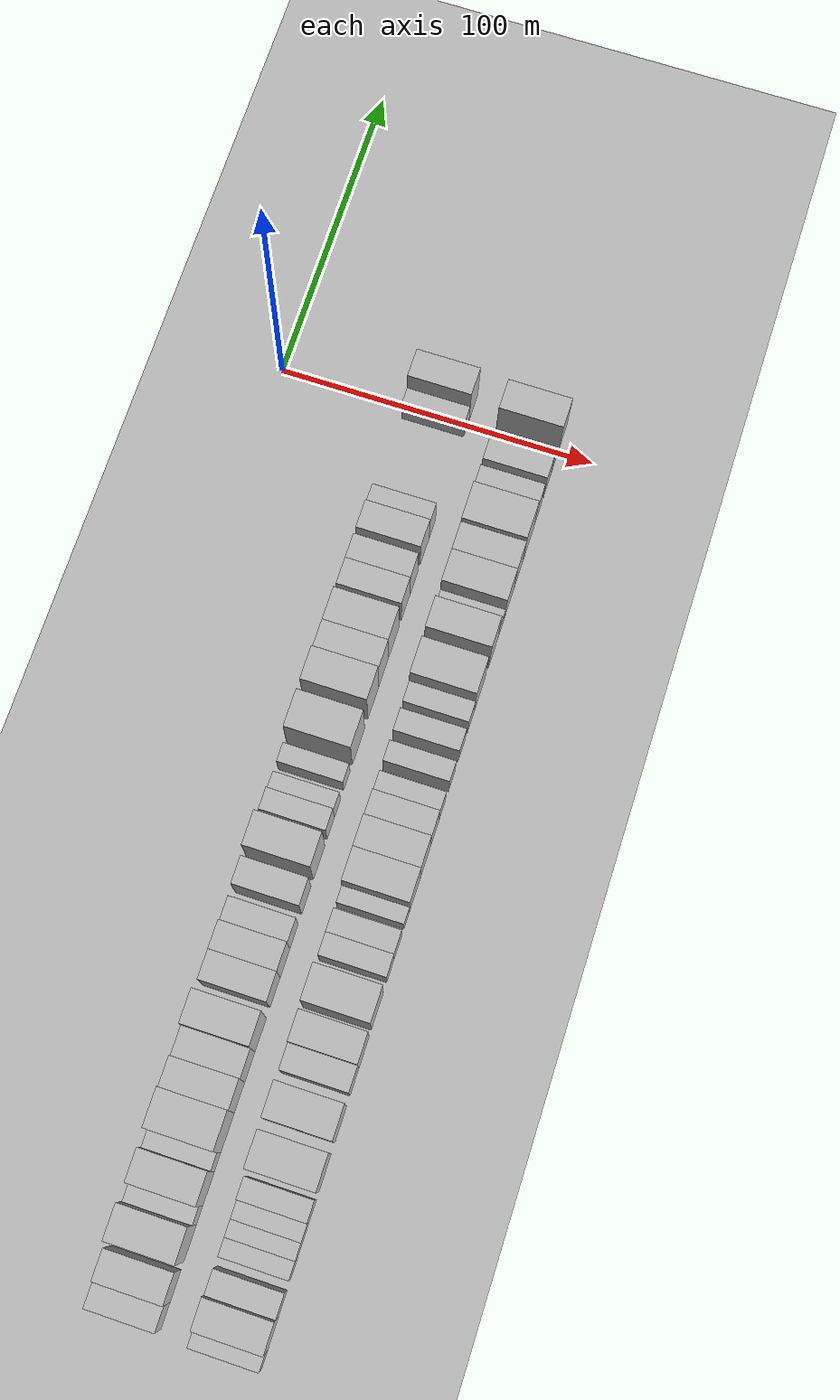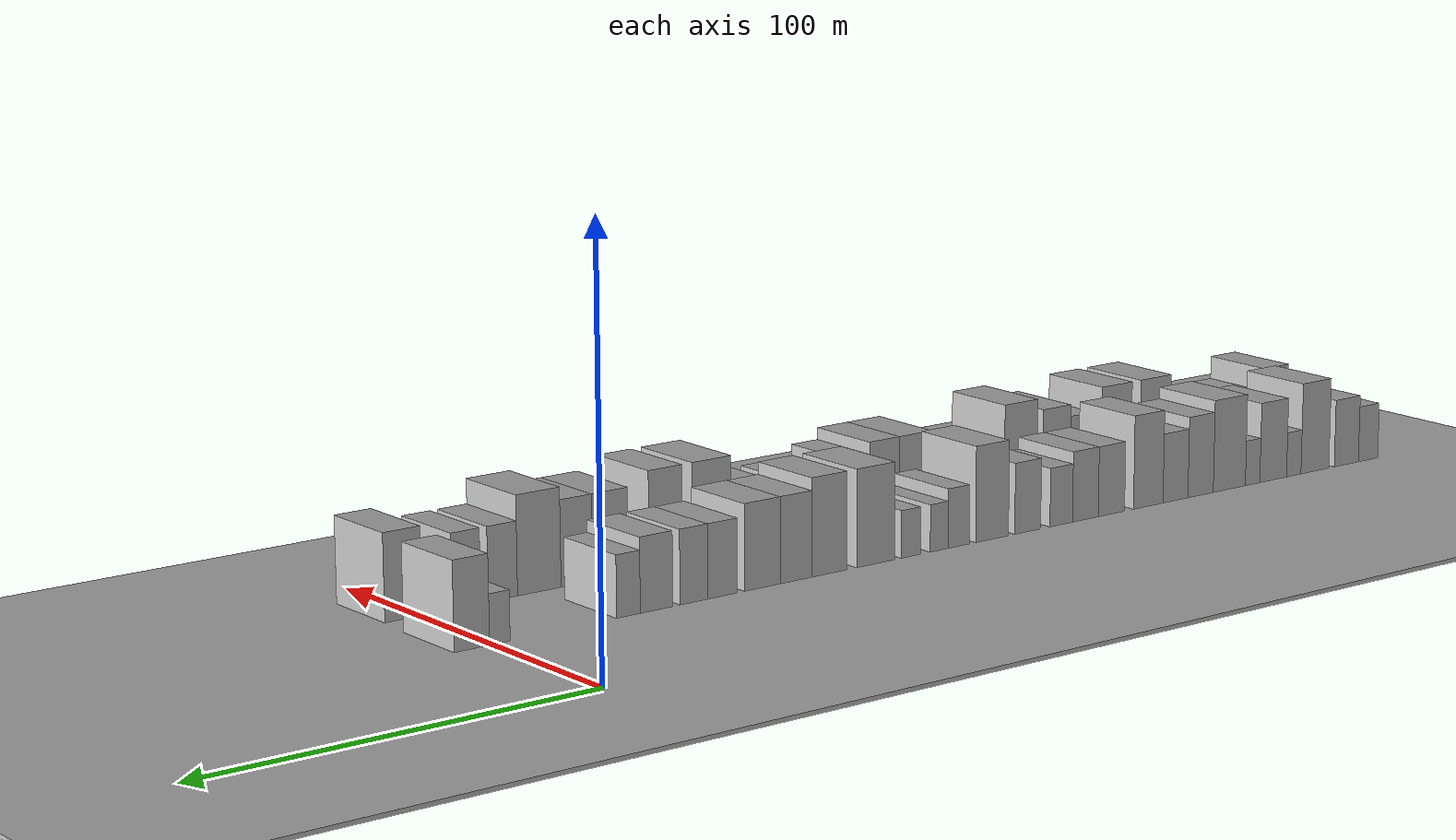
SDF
<sdf version="1.6">
 <world name="default">
  <include><name>ground_plane_1</name><uri>model://HANNAS_ground_plane</uri></include>
  <include>
   <name>ground_plane_2</name>
   <uri>model://HANNAS_ground_plane</uri>
   <pose>100 0 0  0 0 0</pose>
  </include>
  <model name="building_1">
   <static>1</static>
   <pose>50.0000 -271.3934 0 0.000000 0.000000 0.000000</pose>
   <link name="link">
    <pose>0 0 7.50 0 0 0</pose>
    <collision name="collision"><geometry><box><size>20.0000 7.2133 15.0000</size></box></geometry></collision>
    <visual name="visual">
     <cast_shadows>0</cast_shadows>
     <geometry><box><size>20.0000 7.2133 15.0000</size></box></geometry>
     <material>
      <script>
       <uri>model://HANNAS_wall/materials/scripts</uri>
       <uri>model://HANNAS_wall/materials/textures</uri>
       <name>vrc/HANNAS_wall</name>
      </script>
     </material>
    </visual>
   </link>
  </model>
  <model name="building_2">
   <static>1</static>
   <pose>50.0000 -263.3516 0 0.000000 0.000000 0.000000</pose>
   <link name="link">
    <pose>0 0 9.00 0 0 0</pose>
    <collision name="collision"><geometry><box><size>20.0000 8.8703 18.0000</size></box></geometry></collision>
    <visual name="visual">
     <cast_shadows>0</cast_shadows>
     <geometry><box><size>20.0000 8.8703 18.0000</size></box></geometry>
     <material>
      <script>
       <uri>model://HANNAS_wall/materials/scripts</uri>
       <uri>model://HANNAS_wall/materials/textures</uri>
       <name>vrc/HANNAS_wall</name>
      </script>
     </material>
    </visual>
   </link>
  </model>
  <model name="building_3">
   <static>1</static>
   <pose>50.0000 -251.8428 0 0.000000 0.000000 0.000000</pose>
   <link name="link">
    <pose>0 0 12.00 0 0 0</pose>
    <collision name="collision"><geometry><box><size>20.0000 10.1471 24.0000</size></box></geometry></collision>
    <visual name="visual">
     <cast_shadows>0</cast_shadows>
     <geometry><box><size>20.0000 10.1471 24.0000</size></box></geometry>
     <material>
      <script>
       <uri>model://HANNAS_wall/materials/scripts</uri>
       <uri>model://HANNAS_wall/materials/textures</uri>
       <name>vrc/HANNAS_wall</name>
      </script>
     </material>
    </visual>
   </link>
  </model>
  <model name="building_4">
   <static>1</static>
   <pose>50.0000 -244.1770 0 0.000000 0.000000 0.000000</pose>
   <link name="link">
    <pose>0 0 6.00 0 0 0</pose>
    <collision name="collision"><geometry><box><size>20.0000 5.1846 12.0000</size></box></geometry></collision>
    <visual name="visual">
     <cast_shadows>0</cast_shadows>
     <geometry><box><size>20.0000 5.1846 12.0000</size></box></geometry>
     <material>
      <script>
       <uri>model://HANNAS_wall/materials/scripts</uri>
       <uri>model://HANNAS_wall/materials/textures</uri>
       <name>vrc/HANNAS_wall</name>
      </script>
     </material>
    </visual>
   </link>
  </model>
  <model name="building_5">
   <static>1</static>
   <pose>50.0000 -236.8170 0 0.000000 0.000000 0.000000</pose>
   <link name="link">
    <pose>0 0 10.50 0 0 0</pose>
    <collision name="collision"><geometry><box><size>20.0000 9.5352 21.0000</size></box></geometry></collision>
    <visual name="visual">
     <cast_shadows>0</cast_shadows>
     <geometry><box><size>20.0000 9.5352 21.0000</size></box></geometry>
     <material>
      <script>
       <uri>model://HANNAS_wall/materials/scripts</uri>
       <uri>model://HANNAS_wall/materials/textures</uri>
       <name>vrc/HANNAS_wall</name>
      </script>
     </material>
    </visual>
   </link>
  </model>
  <model name="building_6">
   <static>1</static>
   <pose>50.0000 -229.4893 0 0.000000 0.000000 0.000000</pose>
   <link name="link">
    <pose>0 0 6.00 0 0 0</pose>
    <collision name="collision"><geometry><box><size>20.0000 5.1203 12.0000</size></box></geometry></collision>
    <visual name="visual">
     <cast_shadows>0</cast_shadows>
     <geometry><box><size>20.0000 5.1203 12.0000</size></box></geometry>
     <material>
      <script>
       <uri>model://HANNAS_wall/materials/scripts</uri>
       <uri>model://HANNAS_wall/materials/textures</uri>
       <name>vrc/HANNAS_wall</name>
      </script>
     </material>
    </visual>
   </link>
  </model>
  <model name="building_7">
   <static>1</static>
   <pose>50.0000 -221.3045 0 0.000000 0.000000 0.000000</pose>
   <link name="link">
    <pose>0 0 12.00 0 0 0</pose>
    <collision name="collision"><geometry><box><size>20.0000 11.2494 24.0000</size></box></geometry></collision>
    <visual name="visual">
     <cast_shadows>0</cast_shadows>
     <geometry><box><size>20.0000 11.2494 24.0000</size></box></geometry>
     <material>
      <script>
       <uri>model://HANNAS_wall/materials/scripts</uri>
       <uri>model://HANNAS_wall/materials/textures</uri>
       <name>vrc/HANNAS_wall</name>
      </script>
     </material>
    </visual>
   </link>
  </model>
  <model name="building_8">
   <static>1</static>
   <pose>50.0000 -211.3098 0 0.000000 0.000000 0.000000</pose>
   <link name="link">
    <pose>0 0 10.50 0 0 0</pose>
    <collision name="collision"><geometry><box><size>20.0000 8.7400 21.0000</size></box></geometry></collision>
    <visual name="visual">
     <cast_shadows>0</cast_shadows>
     <geometry><box><size>20.0000 8.7400 21.0000</size></box></geometry>
     <material>
      <script>
       <uri>model://HANNAS_wall/materials/scripts</uri>
       <uri>model://HANNAS_wall/materials/textures</uri>
       <name>vrc/HANNAS_wall</name>
      </script>
     </material>
    </visual>
   </link>
  </model>
  <model name="building_9">
   <static>1</static>
   <pose>50.0000 -202.6717 0 0.000000 0.000000 0.000000</pose>
   <link name="link">
    <pose>0 0 9.00 0 0 0</pose>
    <collision name="collision"><geometry><box><size>20.0000 8.5363 18.0000</size></box></geometry></collision>
    <visual name="visual">
     <cast_shadows>0</cast_shadows>
     <geometry><box><size>20.0000 8.5363 18.0000</size></box></geometry>
     <material>
      <script>
       <uri>model://HANNAS_wall/materials/scripts</uri>
       <uri>model://HANNAS_wall/materials/textures</uri>
       <name>vrc/HANNAS_wall</name>
      </script>
     </material>
    </visual>
   </link>
  </model>
  <model name="building_10">
   <static>1</static>
   <pose>50.0000 -193.4217 0 0.000000 0.000000 0.000000</pose>
   <link name="link">
    <pose>0 0 12.00 0 0 0</pose>
    <collision name="collision"><geometry><box><size>20.0000 9.9637 24.0000</size></box></geometry></collision>
    <visual name="visual">
     <cast_shadows>0</cast_shadows>
     <geometry><box><size>20.0000 9.9637 24.0000</size></box></geometry>
     <material>
      <script>
       <uri>model://HANNAS_wall/materials/scripts</uri>
       <uri>model://HANNAS_wall/materials/textures</uri>
       <name>vrc/HANNAS_wall</name>
      </script>
     </material>
    </visual>
   </link>
  </model>
  <model name="building_11">
   <static>1</static>
   <pose>50.0000 -181.0662 0 0.000000 0.000000 0.000000</pose>
   <link name="link">
    <pose>0 0 9.00 0 0 0</pose>
    <collision name="collision"><geometry><box><size>20.0000 8.7472 18.0000</size></box></geometry></collision>
    <visual name="visual">
     <cast_shadows>0</cast_shadows>
     <geometry><box><size>20.0000 8.7472 18.0000</size></box></geometry>
     <material>
      <script>
       <uri>model://HANNAS_wall/materials/scripts</uri>
       <uri>model://HANNAS_wall/materials/textures</uri>
       <name>vrc/HANNAS_wall</name>
      </script>
     </material>
    </visual>
   </link>
  </model>
  <model name="building_12">
   <static>1</static>
   <pose>50.0000 -172.4583 0 0.000000 0.000000 0.000000</pose>
   <link name="link">
    <pose>0 0 9.00 0 0 0</pose>
    <collision name="collision"><geometry><box><size>20.0000 8.4685 18.0000</size></box></geometry></collision>
    <visual name="visual">
     <cast_shadows>0</cast_shadows>
     <geometry><box><size>20.0000 8.4685 18.0000</size></box></geometry>
     <material>
      <script>
       <uri>model://HANNAS_wall/materials/scripts</uri>
       <uri>model://HANNAS_wall/materials/textures</uri>
       <name>vrc/HANNAS_wall</name>
      </script>
     </material>
    </visual>
   </link>
  </model>
  <model name="building_13">
   <static>1</static>
   <pose>50.0000 -164.5516 0 0.000000 0.000000 0.000000</pose>
   <link name="link">
    <pose>0 0 7.50 0 0 0</pose>
    <collision name="collision"><geometry><box><size>20.0000 7.3451 15.0000</size></box></geometry></collision>
    <visual name="visual">
     <cast_shadows>0</cast_shadows>
     <geometry><box><size>20.0000 7.3451 15.0000</size></box></geometry>
     <material>
      <script>
       <uri>model://HANNAS_wall/materials/scripts</uri>
       <uri>model://HANNAS_wall/materials/textures</uri>
       <name>vrc/HANNAS_wall</name>
      </script>
     </material>
    </visual>
   </link>
  </model>
  <model name="building_14">
   <static>1</static>
   <pose>50.0000 -153.7193 0 0.000000 0.000000 0.000000</pose>
   <link name="link">
    <pose>0 0 9.00 0 0 0</pose>
    <collision name="collision"><geometry><box><size>20.0000 8.3196 18.0000</size></box></geometry></collision>
    <visual name="visual">
     <cast_shadows>0</cast_shadows>
     <geometry><box><size>20.0000 8.3196 18.0000</size></box></geometry>
     <material>
      <script>
       <uri>model://HANNAS_wall/materials/scripts</uri>
       <uri>model://HANNAS_wall/materials/textures</uri>
       <name>vrc/HANNAS_wall</name>
      </script>
     </material>
    </visual>
   </link>
  </model>
  <model name="building_15">
   <static>1</static>
   <pose>50.0000 -142.3722 0 0.000000 0.000000 0.000000</pose>
   <link name="link">
    <pose>0 0 12.00 0 0 0</pose>
    <collision name="collision"><geometry><box><size>20.0000 10.3744 24.0000</size></box></geometry></collision>
    <visual name="visual">
     <cast_shadows>0</cast_shadows>
     <geometry><box><size>20.0000 10.3744 24.0000</size></box></geometry>
     <material>
      <script>
       <uri>model://HANNAS_wall/materials/scripts</uri>
       <uri>model://HANNAS_wall/materials/textures</uri>
       <name>vrc/HANNAS_wall</name>
      </script>
     </material>
    </visual>
   </link>
  </model>
  <model name="building_16">
   <static>1</static>
   <pose>50.0000 -131.8775 0 0.000000 0.000000 0.000000</pose>
   <link name="link">
    <pose>0 0 7.50 0 0 0</pose>
    <collision name="collision"><geometry><box><size>20.0000 6.6150 15.0000</size></box></geometry></collision>
    <visual name="visual">
     <cast_shadows>0</cast_shadows>
     <geometry><box><size>20.0000 6.6150 15.0000</size></box></geometry>
     <material>
      <script>
       <uri>model://HANNAS_wall/materials/scripts</uri>
       <uri>model://HANNAS_wall/materials/textures</uri>
       <name>vrc/HANNAS_wall</name>
      </script>
     </material>
    </visual>
   </link>
  </model>
  <model name="building_17">
   <static>1</static>
   <pose>50.0000 -125.8137 0 0.000000 0.000000 0.000000</pose>
   <link name="link">
    <pose>0 0 6.00 0 0 0</pose>
    <collision name="collision"><geometry><box><size>20.0000 5.5126 12.0000</size></box></geometry></collision>
    <visual name="visual">
     <cast_shadows>0</cast_shadows>
     <geometry><box><size>20.0000 5.5126 12.0000</size></box></geometry>
     <material>
      <script>
       <uri>model://HANNAS_wall/materials/scripts</uri>
       <uri>model://HANNAS_wall/materials/textures</uri>
       <name>vrc/HANNAS_wall</name>
      </script>
     </material>
    </visual>
   </link>
  </model>
  <model name="building_18">
   <static>1</static>
   <pose>50.0000 -117.1598 0 0.000000 0.000000 0.000000</pose>
   <link name="link">
    <pose>0 0 6.00 0 0 0</pose>
    <collision name="collision"><geometry><box><size>20.0000 5.7952 12.0000</size></box></geometry></collision>
    <visual name="visual">
     <cast_shadows>0</cast_shadows>
     <geometry><box><size>20.0000 5.7952 12.0000</size></box></geometry>
     <material>
      <script>
       <uri>model://HANNAS_wall/materials/scripts</uri>
       <uri>model://HANNAS_wall/materials/textures</uri>
       <name>vrc/HANNAS_wall</name>
      </script>
     </material>
    </visual>
   </link>
  </model>
  <model name="building_19">
   <static>1</static>
   <pose>50.0000 -106.5253 0 0.000000 0.000000 0.000000</pose>
   <link name="link">
    <pose>0 0 12.00 0 0 0</pose>
    <collision name="collision"><geometry><box><size>20.0000 11.4739 24.0000</size></box></geometry></collision>
    <visual name="visual">
     <cast_shadows>0</cast_shadows>
     <geometry><box><size>20.0000 11.4739 24.0000</size></box></geometry>
     <material>
      <script>
       <uri>model://HANNAS_wall/materials/scripts</uri>
       <uri>model://HANNAS_wall/materials/textures</uri>
       <name>vrc/HANNAS_wall</name>
      </script>
     </material>
    </visual>
   </link>
  </model>
  <model name="building_20">
   <static>1</static>
   <pose>50.0000 -92.6263 0 0.000000 0.000000 0.000000</pose>
   <link name="link">
    <pose>0 0 12.00 0 0 0</pose>
    <collision name="collision"><geometry><box><size>20.0000 10.3240 24.0000</size></box></geometry></collision>
    <visual name="visual">
     <cast_shadows>0</cast_shadows>
     <geometry><box><size>20.0000 10.3240 24.0000</size></box></geometry>
     <material>
      <script>
       <uri>model://HANNAS_wall/materials/scripts</uri>
       <uri>model://HANNAS_wall/materials/textures</uri>
       <name>vrc/HANNAS_wall</name>
      </script>
     </material>
    </visual>
   </link>
  </model>
  <model name="building_21">
   <static>1</static>
   <pose>50.0000 -82.8727 0 0.000000 0.000000 0.000000</pose>
   <link name="link">
    <pose>0 0 10.50 0 0 0</pose>
    <collision name="collision"><geometry><box><size>20.0000 9.1832 21.0000</size></box></geometry></collision>
    <visual name="visual">
     <cast_shadows>0</cast_shadows>
     <geometry><box><size>20.0000 9.1832 21.0000</size></box></geometry>
     <material>
      <script>
       <uri>model://HANNAS_wall/materials/scripts</uri>
       <uri>model://HANNAS_wall/materials/textures</uri>
       <name>vrc/HANNAS_wall</name>
      </script>
     </material>
    </visual>
   </link>
  </model>
  <model name="building_22">
   <static>1</static>
   <pose>50.0000 -73.1384 0 0.000000 0.000000 0.000000</pose>
   <link name="link">
    <pose>0 0 10.50 0 0 0</pose>
    <collision name="collision"><geometry><box><size>20.0000 10.2854 21.0000</size></box></geometry></collision>
    <visual name="visual">
     <cast_shadows>0</cast_shadows>
     <geometry><box><size>20.0000 10.2854 21.0000</size></box></geometry>
     <material>
      <script>
       <uri>model://HANNAS_wall/materials/scripts</uri>
       <uri>model://HANNAS_wall/materials/textures</uri>
       <name>vrc/HANNAS_wall</name>
      </script>
     </material>
    </visual>
   </link>
  </model>
  <model name="building_23">
   <static>1</static>
   <pose>50.0000 -61.7829 0 0.000000 0.000000 0.000000</pose>
   <link name="link">
    <pose>0 0 9.00 0 0 0</pose>
    <collision name="collision"><geometry><box><size>20.0000 8.4257 18.0000</size></box></geometry></collision>
    <visual name="visual">
     <cast_shadows>0</cast_shadows>
     <geometry><box><size>20.0000 8.4257 18.0000</size></box></geometry>
     <material>
      <script>
       <uri>model://HANNAS_wall/materials/scripts</uri>
       <uri>model://HANNAS_wall/materials/textures</uri>
       <name>vrc/HANNAS_wall</name>
      </script>
     </material>
    </visual>
   </link>
  </model>
  <model name="building_24">
   <static>1</static>
   <pose>50.0000 -53.6768 0 0.000000 0.000000 0.000000</pose>
   <link name="link">
    <pose>0 0 9.00 0 0 0</pose>
    <collision name="collision"><geometry><box><size>20.0000 7.7865 18.0000</size></box></geometry></collision>
    <visual name="visual">
     <cast_shadows>0</cast_shadows>
     <geometry><box><size>20.0000 7.7865 18.0000</size></box></geometry>
     <material>
      <script>
       <uri>model://HANNAS_wall/materials/scripts</uri>
       <uri>model://HANNAS_wall/materials/textures</uri>
       <name>vrc/HANNAS_wall</name>
      </script>
     </material>
    </visual>
   </link>
  </model>
  <model name="building_25">
   <static>1</static>
   <pose>50.0000 -43.2927 0 0.000000 0.000000 0.000000</pose>
   <link name="link">
    <pose>0 0 9.00 0 0 0</pose>
    <collision name="collision"><geometry><box><size>20.0000 8.9817 18.0000</size></box></geometry></collision>
    <visual name="visual">
     <cast_shadows>0</cast_shadows>
     <geometry><box><size>20.0000 8.9817 18.0000</size></box></geometry>
     <material>
      <script>
       <uri>model://HANNAS_wall/materials/scripts</uri>
       <uri>model://HANNAS_wall/materials/textures</uri>
       <name>vrc/HANNAS_wall</name>
      </script>
     </material>
    </visual>
   </link>
  </model>
  <model name="building_26">
   <static>1</static>
   <pose>50.0000 -35.5720 0 0.000000 0.000000 0.000000</pose>
   <link name="link">
    <pose>0 0 7.50 0 0 0</pose>
    <collision name="collision"><geometry><box><size>20.0000 6.4597 15.0000</size></box></geometry></collision>
    <visual name="visual">
     <cast_shadows>0</cast_shadows>
     <geometry><box><size>20.0000 6.4597 15.0000</size></box></geometry>
     <material>
      <script>
       <uri>model://HANNAS_wall/materials/scripts</uri>
       <uri>model://HANNAS_wall/materials/textures</uri>
       <name>vrc/HANNAS_wall</name>
      </script>
     </material>
    </visual>
   </link>
  </model>
  <model name="building_27">
   <static>1</static>
   <pose>50.0000 -1.3399 0 0.000000 0.000000 0.000000</pose>
   <link name="link">
    <pose>0 0 6.00 0 0 0</pose>
    <collision name="collision"><geometry><box><size>20.0000 5.3348 12.0000</size></box></geometry></collision>
    <visual name="visual">
     <cast_shadows>0</cast_shadows>
     <geometry><box><size>20.0000 5.3348 12.0000</size></box></geometry>
     <material>
      <script>
       <uri>model://HANNAS_wall/materials/scripts</uri>
       <uri>model://HANNAS_wall/materials/textures</uri>
       <name>vrc/HANNAS_wall</name>
      </script>
     </material>
    </visual>
   </link>
  </model>
  <model name="building_28">
   <static>1</static>
   <pose>50.0000 5.8778 0 0.000000 0.000000 0.000000</pose>
   <link name="link">
    <pose>0 0 10.50 0 0 0</pose>
    <collision name="collision"><geometry><box><size>20.0000 9.1007 21.0000</size></box></geometry></collision>
    <visual name="visual">
     <cast_shadows>0</cast_shadows>
     <geometry><box><size>20.0000 9.1007 21.0000</size></box></geometry>
     <material>
      <script>
       <uri>model://HANNAS_wall/materials/scripts</uri>
       <uri>model://HANNAS_wall/materials/textures</uri>
       <name>vrc/HANNAS_wall</name>
      </script>
     </material>
    </visual>
   </link>
  </model>
  <model name="building_59">
   <static>1</static>
   <pose>79.0000 -273.4948 0 0.000000 0.000000 0.000000</pose>
   <link name="link">
    <pose>0 0 6.00 0 0 0</pose>
    <collision name="collision"><geometry><box><size>20.0000 5.0103 12.0000</size></box></geometry></collision>
    <visual name="visual">
     <cast_shadows>0</cast_shadows>
     <geometry><box><size>20.0000 5.0103 12.0000</size></box></geometry>
     <material>
      <script>
       <uri>model://HANNAS_wall/materials/scripts</uri>
       <uri>model://HANNAS_wall/materials/textures</uri>
       <name>vrc/HANNAS_wall</name>
      </script>
     </material>
    </visual>
   </link>
  </model>
  <model name="building_60">
   <static>1</static>
   <pose>79.0000 -266.5489 0 0.000000 0.000000 0.000000</pose>
   <link name="link">
    <pose>0 0 10.50 0 0 0</pose>
    <collision name="collision"><geometry><box><size>20.0000 8.8815 21.0000</size></box></geometry></collision>
    <visual name="visual">
     <cast_shadows>0</cast_shadows>
     <geometry><box><size>20.0000 8.8815 21.0000</size></box></geometry>
     <material>
      <script>
       <uri>model://HANNAS_wall/materials/scripts</uri>
       <uri>model://HANNAS_wall/materials/textures</uri>
       <name>vrc/HANNAS_wall</name>
      </script>
     </material>
    </visual>
   </link>
  </model>
  <model name="building_61">
   <static>1</static>
   <pose>79.0000 -258.5615 0 0.000000 0.000000 0.000000</pose>
   <link name="link">
    <pose>0 0 7.50 0 0 0</pose>
    <collision name="collision"><geometry><box><size>20.0000 7.0934 15.0000</size></box></geometry></collision>
    <visual name="visual">
     <cast_shadows>0</cast_shadows>
     <geometry><box><size>20.0000 7.0934 15.0000</size></box></geometry>
     <material>
      <script>
       <uri>model://HANNAS_wall/materials/scripts</uri>
       <uri>model://HANNAS_wall/materials/textures</uri>
       <name>vrc/HANNAS_wall</name>
      </script>
     </material>
    </visual>
   </link>
  </model>
  <model name="building_62">
   <static>1</static>
   <pose>79.0000 -249.4196 0 0.000000 0.000000 0.000000</pose>
   <link name="link">
    <pose>0 0 6.00 0 0 0</pose>
    <collision name="collision"><geometry><box><size>20.0000 5.1904 12.0000</size></box></geometry></collision>
    <visual name="visual">
     <cast_shadows>0</cast_shadows>
     <geometry><box><size>20.0000 5.1904 12.0000</size></box></geometry>
     <material>
      <script>
       <uri>model://HANNAS_wall/materials/scripts</uri>
       <uri>model://HANNAS_wall/materials/textures</uri>
       <name>vrc/HANNAS_wall</name>
      </script>
     </material>
    </visual>
   </link>
  </model>
  <model name="building_63">
   <static>1</static>
   <pose>79.0000 -244.3865 0 0.000000 0.000000 0.000000</pose>
   <link name="link">
    <pose>0 0 6.00 0 0 0</pose>
    <collision name="collision"><geometry><box><size>20.0000 4.8758 12.0000</size></box></geometry></collision>
    <visual name="visual">
     <cast_shadows>0</cast_shadows>
     <geometry><box><size>20.0000 4.8758 12.0000</size></box></geometry>
     <material>
      <script>
       <uri>model://HANNAS_wall/materials/scripts</uri>
       <uri>model://HANNAS_wall/materials/textures</uri>
       <name>vrc/HANNAS_wall</name>
      </script>
     </material>
    </visual>
   </link>
  </model>
  <model name="building_64">
   <static>1</static>
   <pose>79.0000 -239.3299 0 0.000000 0.000000 0.000000</pose>
   <link name="link">
    <pose>0 0 6.00 0 0 0</pose>
    <collision name="collision"><geometry><box><size>20.0000 5.2375 12.0000</size></box></geometry></collision>
    <visual name="visual">
     <cast_shadows>0</cast_shadows>
     <geometry><box><size>20.0000 5.2375 12.0000</size></box></geometry>
     <material>
      <script>
       <uri>model://HANNAS_wall/materials/scripts</uri>
       <uri>model://HANNAS_wall/materials/textures</uri>
       <name>vrc/HANNAS_wall</name>
      </script>
     </material>
    </visual>
   </link>
  </model>
  <model name="building_65">
   <static>1</static>
   <pose>79.0000 -233.5546 0 0.000000 0.000000 0.000000</pose>
   <link name="link">
    <pose>0 0 7.50 0 0 0</pose>
    <collision name="collision"><geometry><box><size>20.0000 6.3130 15.0000</size></box></geometry></collision>
    <visual name="visual">
     <cast_shadows>0</cast_shadows>
     <geometry><box><size>20.0000 6.3130 15.0000</size></box></geometry>
     <material>
      <script>
       <uri>model://HANNAS_wall/materials/scripts</uri>
       <uri>model://HANNAS_wall/materials/textures</uri>
       <name>vrc/HANNAS_wall</name>
      </script>
     </material>
    </visual>
   </link>
  </model>
  <model name="building_66">
   <static>1</static>
   <pose>79.0000 -223.0500 0 0.000000 0.000000 0.000000</pose>
   <link name="link">
    <pose>0 0 12.00 0 0 0</pose>
    <collision name="collision"><geometry><box><size>20.0000 10.6962 24.0000</size></box></geometry></collision>
    <visual name="visual">
     <cast_shadows>0</cast_shadows>
     <geometry><box><size>20.0000 10.6962 24.0000</size></box></geometry>
     <material>
      <script>
       <uri>model://HANNAS_wall/materials/scripts</uri>
       <uri>model://HANNAS_wall/materials/textures</uri>
       <name>vrc/HANNAS_wall</name>
      </script>
     </material>
    </visual>
   </link>
  </model>
  <model name="building_67">
   <static>1</static>
   <pose>79.0000 -209.5441 0 0.000000 0.000000 0.000000</pose>
   <link name="link">
    <pose>0 0 12.00 0 0 0</pose>
    <collision name="collision"><geometry><box><size>20.0000 10.3157 24.0000</size></box></geometry></collision>
    <visual name="visual">
     <cast_shadows>0</cast_shadows>
     <geometry><box><size>20.0000 10.3157 24.0000</size></box></geometry>
     <material>
      <script>
       <uri>model://HANNAS_wall/materials/scripts</uri>
       <uri>model://HANNAS_wall/materials/textures</uri>
       <name>vrc/HANNAS_wall</name>
      </script>
     </material>
    </visual>
   </link>
  </model>
  <model name="building_68">
   <static>1</static>
   <pose>79.0000 -197.5531 0 0.000000 0.000000 0.000000</pose>
   <link name="link">
    <pose>0 0 9.00 0 0 0</pose>
    <collision name="collision"><geometry><box><size>20.0000 7.6663 18.0000</size></box></geometry></collision>
    <visual name="visual">
     <cast_shadows>0</cast_shadows>
     <geometry><box><size>20.0000 7.6663 18.0000</size></box></geometry>
     <material>
      <script>
       <uri>model://HANNAS_wall/materials/scripts</uri>
       <uri>model://HANNAS_wall/materials/textures</uri>
       <name>vrc/HANNAS_wall</name>
      </script>
     </material>
    </visual>
   </link>
  </model>
  <model name="building_69">
   <static>1</static>
   <pose>79.0000 -189.1175 0 0.000000 0.000000 0.000000</pose>
   <link name="link">
    <pose>0 0 10.50 0 0 0</pose>
    <collision name="collision"><geometry><box><size>20.0000 9.2048 21.0000</size></box></geometry></collision>
    <visual name="visual">
     <cast_shadows>0</cast_shadows>
     <geometry><box><size>20.0000 9.2048 21.0000</size></box></geometry>
     <material>
      <script>
       <uri>model://HANNAS_wall/materials/scripts</uri>
       <uri>model://HANNAS_wall/materials/textures</uri>
       <name>vrc/HANNAS_wall</name>
      </script>
     </material>
    </visual>
   </link>
  </model>
  <model name="building_70">
   <static>1</static>
   <pose>79.0000 -177.1046 0 0.000000 0.000000 0.000000</pose>
   <link name="link">
    <pose>0 0 12.00 0 0 0</pose>
    <collision name="collision"><geometry><box><size>20.0000 10.8210 24.0000</size></box></geometry></collision>
    <visual name="visual">
     <cast_shadows>0</cast_shadows>
     <geometry><box><size>20.0000 10.8210 24.0000</size></box></geometry>
     <material>
      <script>
       <uri>model://HANNAS_wall/materials/scripts</uri>
       <uri>model://HANNAS_wall/materials/textures</uri>
       <name>vrc/HANNAS_wall</name>
      </script>
     </material>
    </visual>
   </link>
  </model>
  <model name="building_71">
   <static>1</static>
   <pose>79.0000 -165.3211 0 0.000000 0.000000 0.000000</pose>
   <link name="link">
    <pose>0 0 7.50 0 0 0</pose>
    <collision name="collision"><geometry><box><size>20.0000 6.7460 15.0000</size></box></geometry></collision>
    <visual name="visual">
     <cast_shadows>0</cast_shadows>
     <geometry><box><size>20.0000 6.7460 15.0000</size></box></geometry>
     <material>
      <script>
       <uri>model://HANNAS_wall/materials/scripts</uri>
       <uri>model://HANNAS_wall/materials/textures</uri>
       <name>vrc/HANNAS_wall</name>
      </script>
     </material>
    </visual>
   </link>
  </model>
  <model name="building_72">
   <static>1</static>
   <pose>79.0000 -158.4674 0 0.000000 0.000000 0.000000</pose>
   <link name="link">
    <pose>0 0 7.50 0 0 0</pose>
    <collision name="collision"><geometry><box><size>20.0000 6.9614 15.0000</size></box></geometry></collision>
    <visual name="visual">
     <cast_shadows>0</cast_shadows>
     <geometry><box><size>20.0000 6.9614 15.0000</size></box></geometry>
     <material>
      <script>
       <uri>model://HANNAS_wall/materials/scripts</uri>
       <uri>model://HANNAS_wall/materials/textures</uri>
       <name>vrc/HANNAS_wall</name>
      </script>
     </material>
    </visual>
   </link>
  </model>
  <model name="building_73">
   <static>1</static>
   <pose>79.0000 -150.4704 0 0.000000 0.000000 0.000000</pose>
   <link name="link">
    <pose>0 0 6.00 0 0 0</pose>
    <collision name="collision"><geometry><box><size>20.0000 5.0326 12.0000</size></box></geometry></collision>
    <visual name="visual">
     <cast_shadows>0</cast_shadows>
     <geometry><box><size>20.0000 5.0326 12.0000</size></box></geometry>
     <material>
      <script>
       <uri>model://HANNAS_wall/materials/scripts</uri>
       <uri>model://HANNAS_wall/materials/textures</uri>
       <name>vrc/HANNAS_wall</name>
      </script>
     </material>
    </visual>
   </link>
  </model>
  <model name="building_74">
   <static>1</static>
   <pose>79.0000 -142.8758 0 0.000000 0.000000 0.000000</pose>
   <link name="link">
    <pose>0 0 10.50 0 0 0</pose>
    <collision name="collision"><geometry><box><size>20.0000 10.1565 21.0000</size></box></geometry></collision>
    <visual name="visual">
     <cast_shadows>0</cast_shadows>
     <geometry><box><size>20.0000 10.1565 21.0000</size></box></geometry>
     <material>
      <script>
       <uri>model://HANNAS_wall/materials/scripts</uri>
       <uri>model://HANNAS_wall/materials/textures</uri>
       <name>vrc/HANNAS_wall</name>
      </script>
     </material>
    </visual>
   </link>
  </model>
  <model name="building_75">
   <static>1</static>
   <pose>79.0000 -133.0584 0 0.000000 0.000000 0.000000</pose>
   <link name="link">
    <pose>0 0 10.50 0 0 0</pose>
    <collision name="collision"><geometry><box><size>20.0000 9.4782 21.0000</size></box></geometry></collision>
    <visual name="visual">
     <cast_shadows>0</cast_shadows>
     <geometry><box><size>20.0000 9.4782 21.0000</size></box></geometry>
     <material>
      <script>
       <uri>model://HANNAS_wall/materials/scripts</uri>
       <uri>model://HANNAS_wall/materials/textures</uri>
       <name>vrc/HANNAS_wall</name>
      </script>
     </material>
    </visual>
   </link>
  </model>
  <model name="building_76">
   <static>1</static>
   <pose>79.0000 -124.2952 0 0.000000 0.000000 0.000000</pose>
   <link name="link">
    <pose>0 0 9.00 0 0 0</pose>
    <collision name="collision"><geometry><box><size>20.0000 8.0482 18.0000</size></box></geometry></collision>
    <visual name="visual">
     <cast_shadows>0</cast_shadows>
     <geometry><box><size>20.0000 8.0482 18.0000</size></box></geometry>
     <material>
      <script>
       <uri>model://HANNAS_wall/materials/scripts</uri>
       <uri>model://HANNAS_wall/materials/textures</uri>
       <name>vrc/HANNAS_wall</name>
      </script>
     </material>
    </visual>
   </link>
  </model>
  <model name="building_77">
   <static>1</static>
   <pose>79.0000 -117.1596 0 0.000000 0.000000 0.000000</pose>
   <link name="link">
    <pose>0 0 7.50 0 0 0</pose>
    <collision name="collision"><geometry><box><size>20.0000 6.2230 15.0000</size></box></geometry></collision>
    <visual name="visual">
     <cast_shadows>0</cast_shadows>
     <geometry><box><size>20.0000 6.2230 15.0000</size></box></geometry>
     <material>
      <script>
       <uri>model://HANNAS_wall/materials/scripts</uri>
       <uri>model://HANNAS_wall/materials/textures</uri>
       <name>vrc/HANNAS_wall</name>
      </script>
     </material>
    </visual>
   </link>
  </model>
  <model name="building_78">
   <static>1</static>
   <pose>79.0000 -107.8837 0 0.000000 0.000000 0.000000</pose>
   <link name="link">
    <pose>0 0 7.50 0 0 0</pose>
    <collision name="collision"><geometry><box><size>20.0000 6.3289 15.0000</size></box></geometry></collision>
    <visual name="visual">
     <cast_shadows>0</cast_shadows>
     <geometry><box><size>20.0000 6.3289 15.0000</size></box></geometry>
     <material>
      <script>
       <uri>model://HANNAS_wall/materials/scripts</uri>
       <uri>model://HANNAS_wall/materials/textures</uri>
       <name>vrc/HANNAS_wall</name>
      </script>
     </material>
    </visual>
   </link>
  </model>
  <model name="building_79">
   <static>1</static>
   <pose>79.0000 -98.2653 0 0.000000 0.000000 0.000000</pose>
   <link name="link">
    <pose>0 0 7.50 0 0 0</pose>
    <collision name="collision"><geometry><box><size>20.0000 6.9080 15.0000</size></box></geometry></collision>
    <visual name="visual">
     <cast_shadows>0</cast_shadows>
     <geometry><box><size>20.0000 6.9080 15.0000</size></box></geometry>
     <material>
      <script>
       <uri>model://HANNAS_wall/materials/scripts</uri>
       <uri>model://HANNAS_wall/materials/textures</uri>
       <name>vrc/HANNAS_wall</name>
      </script>
     </material>
    </visual>
   </link>
  </model>
  <model name="building_80">
   <static>1</static>
   <pose>79.0000 -89.6210 0 0.000000 0.000000 0.000000</pose>
   <link name="link">
    <pose>0 0 7.50 0 0 0</pose>
    <collision name="collision"><geometry><box><size>20.0000 6.3806 15.0000</size></box></geometry></collision>
    <visual name="visual">
     <cast_shadows>0</cast_shadows>
     <geometry><box><size>20.0000 6.3806 15.0000</size></box></geometry>
     <material>
      <script>
       <uri>model://HANNAS_wall/materials/scripts</uri>
       <uri>model://HANNAS_wall/materials/textures</uri>
       <name>vrc/HANNAS_wall</name>
      </script>
     </material>
    </visual>
   </link>
  </model>
  <model name="building_81">
   <static>1</static>
   <pose>79.0000 -80.7626 0 0.000000 0.000000 0.000000</pose>
   <link name="link">
    <pose>0 0 12.00 0 0 0</pose>
    <collision name="collision"><geometry><box><size>20.0000 11.3363 24.0000</size></box></geometry></collision>
    <visual name="visual">
     <cast_shadows>0</cast_shadows>
     <geometry><box><size>20.0000 11.3363 24.0000</size></box></geometry>
     <material>
      <script>
       <uri>model://HANNAS_wall/materials/scripts</uri>
       <uri>model://HANNAS_wall/materials/textures</uri>
       <name>vrc/HANNAS_wall</name>
      </script>
     </material>
    </visual>
   </link>
  </model>
  <model name="building_82">
   <static>1</static>
   <pose>79.0000 -67.2696 0 0.000000 0.000000 0.000000</pose>
   <link name="link">
    <pose>0 0 12.00 0 0 0</pose>
    <collision name="collision"><geometry><box><size>20.0000 9.6497 24.0000</size></box></geometry></collision>
    <visual name="visual">
     <cast_shadows>0</cast_shadows>
     <geometry><box><size>20.0000 9.6497 24.0000</size></box></geometry>
     <material>
      <script>
       <uri>model://HANNAS_wall/materials/scripts</uri>
       <uri>model://HANNAS_wall/materials/textures</uri>
       <name>vrc/HANNAS_wall</name>
      </script>
     </material>
    </visual>
   </link>
  </model>
  <model name="building_83">
   <static>1</static>
   <pose>79.0000 -59.4937 0 0.000000 0.000000 0.000000</pose>
   <link name="link">
    <pose>0 0 6.00 0 0 0</pose>
    <collision name="collision"><geometry><box><size>20.0000 5.9021 12.0000</size></box></geometry></collision>
    <visual name="visual">
     <cast_shadows>0</cast_shadows>
     <geometry><box><size>20.0000 5.9021 12.0000</size></box></geometry>
     <material>
      <script>
       <uri>model://HANNAS_wall/materials/scripts</uri>
       <uri>model://HANNAS_wall/materials/textures</uri>
       <name>vrc/HANNAS_wall</name>
      </script>
     </material>
    </visual>
   </link>
  </model>
  <model name="building_84">
   <static>1</static>
   <pose>79.0000 -51.4613 0 0.000000 0.000000 0.000000</pose>
   <link name="link">
    <pose>0 0 10.50 0 0 0</pose>
    <collision name="collision"><geometry><box><size>20.0000 10.1627 21.0000</size></box></geometry></collision>
    <visual name="visual">
     <cast_shadows>0</cast_shadows>
     <geometry><box><size>20.0000 10.1627 21.0000</size></box></geometry>
     <material>
      <script>
       <uri>model://HANNAS_wall/materials/scripts</uri>
       <uri>model://HANNAS_wall/materials/textures</uri>
       <name>vrc/HANNAS_wall</name>
      </script>
     </material>
    </visual>
   </link>
  </model>
  <model name="building_85">
   <static>1</static>
   <pose>79.0000 -42.0060 0 0.000000 0.000000 0.000000</pose>
   <link name="link">
    <pose>0 0 10.50 0 0 0</pose>
    <collision name="collision"><geometry><box><size>20.0000 8.7480 21.0000</size></box></geometry></collision>
    <visual name="visual">
     <cast_shadows>0</cast_shadows>
     <geometry><box><size>20.0000 8.7480 21.0000</size></box></geometry>
     <material>
      <script>
       <uri>model://HANNAS_wall/materials/scripts</uri>
       <uri>model://HANNAS_wall/materials/textures</uri>
       <name>vrc/HANNAS_wall</name>
      </script>
     </material>
    </visual>
   </link>
  </model>
  <model name="building_86">
   <static>1</static>
   <pose>79.0000 -31.6701 0 0.000000 0.000000 0.000000</pose>
   <link name="link">
    <pose>0 0 12.00 0 0 0</pose>
    <collision name="collision"><geometry><box><size>20.0000 11.9237 24.0000</size></box></geometry></collision>
    <visual name="visual">
     <cast_shadows>0</cast_shadows>
     <geometry><box><size>20.0000 11.9237 24.0000</size></box></geometry>
     <material>
      <script>
       <uri>model://HANNAS_wall/materials/scripts</uri>
       <uri>model://HANNAS_wall/materials/textures</uri>
       <name>vrc/HANNAS_wall</name>
      </script>
     </material>
    </visual>
   </link>
  </model>
  <model name="building_87">
   <static>1</static>
   <pose>79.0000 -21.7378 0 0.000000 0.000000 0.000000</pose>
   <link name="link">
    <pose>0 0 9.00 0 0 0</pose>
    <collision name="collision"><geometry><box><size>20.0000 7.9410 18.0000</size></box></geometry></collision>
    <visual name="visual">
     <cast_shadows>0</cast_shadows>
     <geometry><box><size>20.0000 7.9410 18.0000</size></box></geometry>
     <material>
      <script>
       <uri>model://HANNAS_wall/materials/scripts</uri>
       <uri>model://HANNAS_wall/materials/textures</uri>
       <name>vrc/HANNAS_wall</name>
      </script>
     </material>
    </visual>
   </link>
  </model>
  <model name="building_88">
   <static>1</static>
   <pose>79.0000 -11.9650 0 0.000000 0.000000 0.000000</pose>
   <link name="link">
    <pose>0 0 9.00 0 0 0</pose>
    <collision name="collision"><geometry><box><size>20.0000 7.6044 18.0000</size></box></geometry></collision>
    <visual name="visual">
     <cast_shadows>0</cast_shadows>
     <geometry><box><size>20.0000 7.6044 18.0000</size></box></geometry>
     <material>
      <script>
       <uri>model://HANNAS_wall/materials/scripts</uri>
       <uri>model://HANNAS_wall/materials/textures</uri>
       <name>vrc/HANNAS_wall</name>
      </script>
     </material>
    </visual>
   </link>
  </model>
  <model name="building_89">
   <static>1</static>
   <pose>79.0000 -5.6486 0 0.000000 0.000000 0.000000</pose>
   <link name="link">
    <pose>0 0 6.00 0 0 0</pose>
    <collision name="collision"><geometry><box><size>20.0000 5.0285 12.0000</size></box></geometry></collision>
    <visual name="visual">
     <cast_shadows>0</cast_shadows>
     <geometry><box><size>20.0000 5.0285 12.0000</size></box></geometry>
     <material>
      <script>
       <uri>model://HANNAS_wall/materials/scripts</uri>
       <uri>model://HANNAS_wall/materials/textures</uri>
       <name>vrc/HANNAS_wall</name>
      </script>
     </material>
    </visual>
   </link>
  </model>
  <model name="building_90">
   <static>1</static>
   <pose>79.0000 4.6921 0 0.000000 0.000000 0.000000</pose>
   <link name="link">
    <pose>0 0 10.50 0 0 0</pose>
    <collision name="collision"><geometry><box><size>20.0000 9.6528 21.0000</size></box></geometry></collision>
    <visual name="visual">
     <cast_shadows>0</cast_shadows>
     <geometry><box><size>20.0000 9.6528 21.0000</size></box></geometry>
     <material>
      <script>
       <uri>model://HANNAS_wall/materials/scripts</uri>
       <uri>model://HANNAS_wall/materials/textures</uri>
       <name>vrc/HANNAS_wall</name>
      </script>
     </material>
    </visual>
   </link>
  </model>
 </world>
</sdf>
